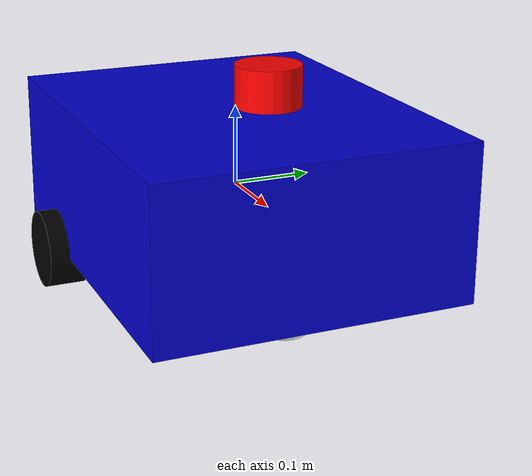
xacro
<?xml version="1.0"?>
<robot xmlns:xacro="http://www.ros.org/wiki/xacro" name="turtlebot">

    <xacro:arg name="prefix" default=""/>
    <xacro:property name="prefix" value="$(arg prefix)"/>

    <xacro:include filename="turtlebot_core.xacro" />
    <xacro:include filename="lidar.xacro" />

    <gazebo>
        <plugin name="diff_drive" filename="libgazebo_ros_diff_drive.so">

            <left_joint>$(arg prefix)left_wheel_joint</left_joint>
            <right_joint>$(arg prefix)right_wheel_joint</right_joint>
            <wheel_separation>0.34</wheel_separation>
            <wheel_diameter>0.10</wheel_diameter>

            <max_wheel_torque>20</max_wheel_torque>
            <max_wheel_acceleration>1.0</max_wheel_acceleration>

            <command_topic>cmd_vel</command_topic>
            <publish_odom>true</publish_odom>
            <publish_odom_tf>true</publish_odom_tf>
            <publish_wheel_tf>true</publish_wheel_tf>

            <odometry_frame>$(arg prefix)odom</odometry_frame>
            <robot_base_frame>$(arg prefix)base_link</robot_base_frame>

        </plugin>
    </gazebo>

</robot>

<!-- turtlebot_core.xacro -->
<robot xmlns:xacro="http://www.ros.org/wiki/xacro">

    <xacro:property name="box_length" value="0.5"/>
    <xacro:property name="box_width" value="0.4"/>
    <xacro:property name="box_height" value="0.2"/>
    <xacro:property name="wheel_radius" value="0.05"/>
    <xacro:property name="wheel_thickness" value="0.05"/>

    <link name="${prefix}base_link">
        <visual>
            <geometry>
                <box size="${box_length} ${box_width} ${box_height}"/>
            </geometry>
            <material name="blue">
                <color rgba="0 0 0.8 1"/>
            </material>
        </visual>
        <collision>
            <geometry>
                <box size="${box_length} ${box_width} ${box_height}"/>
            </geometry>
        </collision>
        <inertial>
            <mass value="2.0"/>
            <inertia ixx="0.02" ixy="0" ixz="0" iyy="0.02" iyz="0" izz="0.02"/>
        </inertial>
    </link>

    <link name="${prefix}left_wheel">
        <visual>
            <geometry>
                <cylinder radius="${wheel_radius}" length="${wheel_thickness}"/>
            </geometry>
            <material name="black">
                <color rgba="0 0 0 1"/>
            </material>
        </visual>
        <collision>
            <geometry>
                <cylinder radius="${wheel_radius}" length="${wheel_thickness}"/>
            </geometry>
        </collision>
        <inertial>
            <mass value="0.2"/>
            <inertia ixx="0.001" ixy="0" ixz="0" iyy="0.001" iyz="0" izz="0.001"/>
        </inertial>
    </link>

    <joint name="${prefix}left_wheel_joint" type="continuous">
        <parent link="${prefix}base_link"/>
        <child link="${prefix}left_wheel"/>
        <origin xyz="-0.12 0.20 -0.1" rpy="-1.5708 0 0"/>
        <axis xyz="0 0 1"/>
    </joint>

    <link name="${prefix}right_wheel">
        <visual>
            <geometry>
                <cylinder radius="${wheel_radius}" length="${wheel_thickness}"/>
            </geometry>
            <material name="black"/>
        </visual>
        <collision>
            <geometry>
                <cylinder radius="${wheel_radius}" length="${wheel_thickness}"/>
            </geometry>
        </collision>
        <inertial>
            <mass value="0.2"/>
            <inertia ixx="0.001" ixy="0" ixz="0" iyy="0.001" iyz="0" izz="0.001"/>
        </inertial>
    </link>

    <joint name="${prefix}right_wheel_joint" type="continuous">
        <parent link="${prefix}base_link"/>
        <child link="${prefix}right_wheel"/>
        <origin xyz="-0.12 -0.20 -0.1" rpy="-1.5708 0 0"/>
        <axis xyz="0 0 1"/>
    </joint>

    <link name="${prefix}caster_wheel">
        <visual>
            <geometry>
                <sphere radius="0.05"/>
            </geometry>
            <material name="white">
                <color rgba="1 1 1 1"/>
            </material>
        </visual>
        <collision>
            <geometry>
                <sphere radius="0.05"/>
            </geometry>
        </collision>
        <inertial>
            <mass value="0.05"/>
            <inertia ixx="0.00001" ixy="0" ixz="0" iyy="0.00001" iyz="0" izz="0.00001"/>
        </inertial>
    </link>

    <joint name="${prefix}caster_joint" type="fixed">
        <parent link="${prefix}base_link"/>
        <child link="${prefix}caster_wheel"/>
        <origin xyz="0.15 0 -0.1" rpy="0 0 0"/>
    </joint>

    <gazebo reference="${prefix}caster_wheel">
        <mu1>0.0</mu1>
        <mu2>0.0</mu2>
        <material>Gazebo/White</material>
    </gazebo>

</robot>

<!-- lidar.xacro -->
<robot xmlns:xacro="http://www.ros.org/wiki/xacro">

    <link name="${prefix}lidar_link">
        <visual>
            <geometry>
                <cylinder radius="0.04" length="0.05"/>
            </geometry>
            <material name="red">
                <color rgba="1 0 0 1"/>
            </material>
        </visual>
        <collision>
            <geometry>
                <cylinder radius="0.04" length="0.05"/>
            </geometry>
        </collision>
        <inertial>
            <mass value="0.1"/>
            <inertia ixx="0.001" ixy="0" ixz="0" iyy="0.001" iyz="0" izz="0.001"/>
        </inertial>
    </link>

    <joint name="${prefix}lidar_joint" type="fixed">
        <parent link="${prefix}base_link"/>
        <child link="${prefix}lidar_link"/>
        <origin xyz="0.1 0 0.15" rpy="0 0 0"/>
    </joint>

    <gazebo reference="${prefix}lidar_link">
        <sensor name="lidar_sensor" type="ray">
            <pose>0 0 0 0 0 0</pose>
            <visualize>true</visualize>
            <update_rate>10</update_rate>
            <ray>
                <scan>
                    <horizontal>
                        <samples>360</samples>
                        <resolution>1</resolution>
                        <min_angle>-3.14159</min_angle>
                        <max_angle>3.14159</max_angle>
                    </horizontal>
                </scan>
                <range>
                    <min>0.15</min>
                    <max>10.0</max>
                    <resolution>0.01</resolution>
                </range>
            </ray>
            <plugin name="gazebo_ros_lidar" filename="libgazebo_ros_ray_sensor.so">
                <ros>
                    <remapping>~/out:=scan</remapping>
                </ros>
                <output_type>sensor_msgs/LaserScan</output_type>
                <frame_name>${prefix}lidar_link</frame_name>
            </plugin>
        </sensor>
    </gazebo>

</robot>
